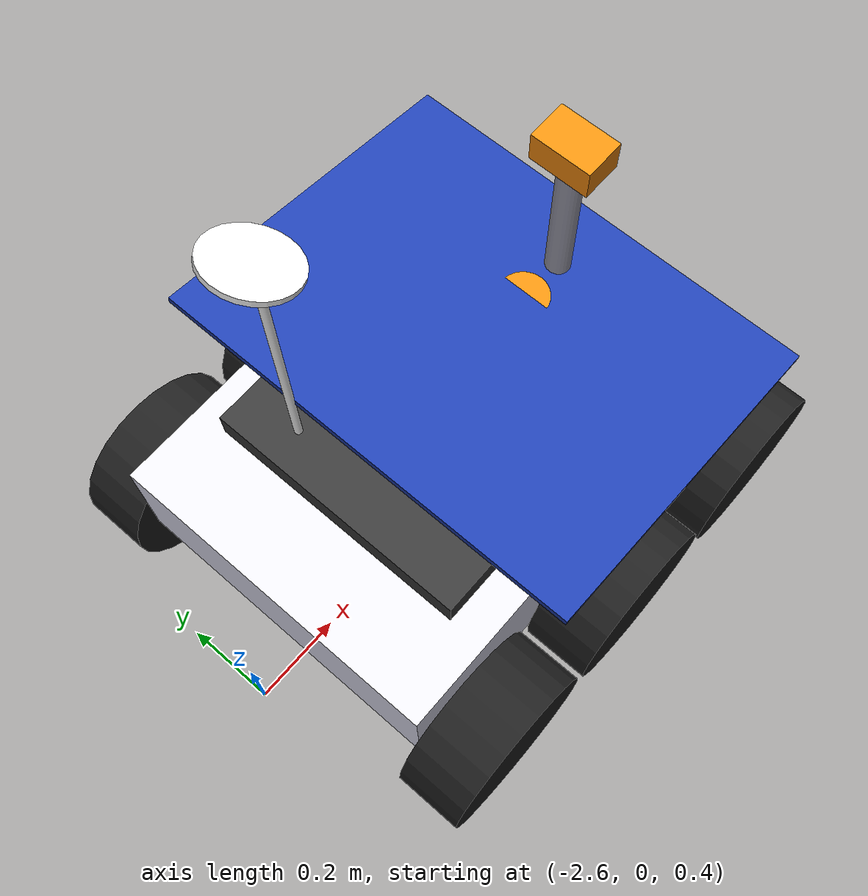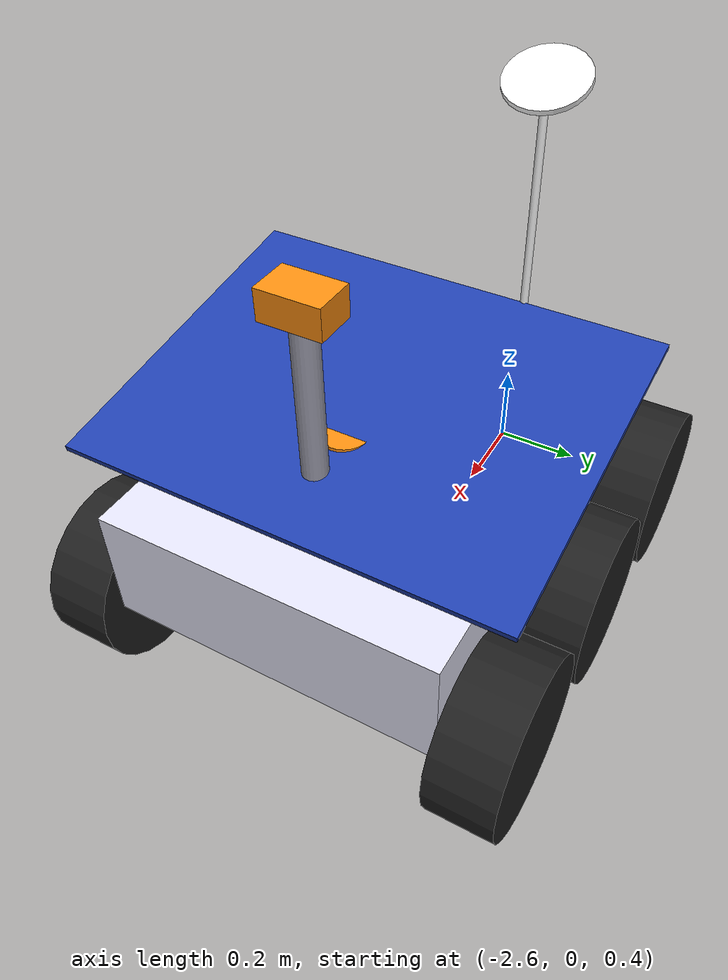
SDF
<sdf version="1.9">
 <world name="lunar_terrain">
  <model name="lunar_rover">
   <pose>-2 0 0.42 0 0 0</pose>
   <link name="base_footprint">
    <inertial>
     <pose>0.016666666666666659 0.0016666666666666659 0.37855555555555559 0 0 0</pose>
     <mass>18</mass>
     <inertia>
      <ixx>1.0591291359493979</ixx>
      <ixy>0.0079999999999999967</ixy>
      <ixz>-0.084729376993739725</ixz>
      <iyy>1.770404444444444</iyy>
      <iyz>-0.014743333333333339</iyz>
      <izz>2.1049767751617141</izz>
     </inertia>
    </inertial>
    <collision name="base_footprint_fixed_joint_lump__base_link_collision">
     <pose>0 0 0.33000000000000002 0 0 0</pose>
     <geometry><box><size>1 0.69999999999999996 0.25</size></box></geometry>
     <surface><friction><ode><mu>0.29999999999999999</mu><mu2>0.29999999999999999</mu2></ode></friction></surface>
    </collision>
    <collision name="base_footprint_fixed_joint_lump__equipment_deck_collision_1">
     <pose>0 0 0.495 0 0 0</pose>
     <geometry><box><size>0.65000000000000002 0.55000000000000004 0.059999999999999998</size></box></geometry>
    </collision>
    <collision name="base_footprint_fixed_joint_lump__antenna_collision_2">
     <pose>-0.25 0.14999999999999999 0.79499999999999993 0 0 0</pose>
     <geometry>
      <cylinder><length>0.55000000000000004</length><radius>0.0080000000000000002</radius></cylinder>
     </geometry>
    </collision>
    <collision name="base_footprint_fixed_joint_lump__antenna_dish_collision_3">
     <pose>-0.25 0.14999999999999999 1.095 0 0.39999999999999997 0</pose>
     <geometry><cylinder><length>0.01</length><radius>0.080000000000000002</radius></cylinder></geometry>
    </collision>
    <collision name="base_footprint_fixed_joint_lump__camera_mast_collision_4">
     <pose>0.29999999999999999 0 0.69500000000000006 0 0 0</pose>
     <geometry>
      <cylinder><length>0.40000000000000002</length><radius>0.025000000000000001</radius></cylinder>
     </geometry>
    </collision>
    <collision name="base_footprint_fixed_joint_lump__camera_link_collision_5">
     <pose>0.29999999999999999 0 0.91500000000000004 0 0 0</pose>
     <geometry><box><size>0.080000000000000002 0.12 0.059999999999999998</size></box></geometry>
    </collision>
    <collision name="base_footprint_fixed_joint_lump__lidar_link_collision_6">
     <pose>0.20000000000000001 0 0.55500000000000005 0 0 0</pose>
     <geometry>
      <cylinder><length>0.059999999999999998</length><radius>0.050000000000000003</radius></cylinder>
     </geometry>
    </collision>
    <collision name="base_footprint_fixed_joint_lump__solar_panel_collision_7">
     <pose>0.10000000000000001 0 0.59499999999999997 0 0.14999999999999999 0</pose>
     <geometry><box><size>0.69999999999999996 0.90000000000000002 0.012</size></box></geometry>
    </collision>
    <visual name="base_footprint_fixed_joint_lump__base_link_visual">
     <pose>0 0 0.33000000000000002 0 0 0</pose>
     <geometry><box><size>1 0.69999999999999996 0.25</size></box></geometry>
     <material>
      <diffuse>0.900000036 0.900000036 0.974999964 1</diffuse>
      <ambient>0.900000036 0.900000036 0.974999964 1</ambient>
     </material>
    </visual>
    <visual name="base_footprint_fixed_joint_lump__equipment_deck_visual_1">
     <pose>0 0 0.495 0 0 0</pose>
     <geometry><box><size>0.65000000000000002 0.55000000000000004 0.059999999999999998</size></box></geometry>
     <material>
      <diffuse>0.225000009 0.225000009 0.225000009 1</diffuse>
      <ambient>0.225000009 0.225000009 0.225000009 1</ambient>
     </material>
    </visual>
    <visual name="base_footprint_fixed_joint_lump__antenna_visual_2">
     <pose>-0.25 0.14999999999999999 0.79499999999999993 0 0 0</pose>
     <geometry>
      <cylinder><length>0.55000000000000004</length><radius>0.0080000000000000002</radius></cylinder>
     </geometry>
     <material><diffuse>1 1 1 1</diffuse><ambient>1 1 1 1</ambient></material>
    </visual>
    <visual name="base_footprint_fixed_joint_lump__antenna_dish_visual_3">
     <pose>-0.25 0.14999999999999999 1.095 0 0.39999999999999997 0</pose>
     <geometry><cylinder><length>0.01</length><radius>0.080000000000000002</radius></cylinder></geometry>
     <material><diffuse>1 1 1 1</diffuse><ambient>1 1 1 1</ambient></material>
    </visual>
    <visual name="base_footprint_fixed_joint_lump__camera_mast_visual_4">
     <pose>0.29999999999999999 0 0.69500000000000006 0 0 0</pose>
     <geometry>
      <cylinder><length>0.40000000000000002</length><radius>0.025000000000000001</radius></cylinder>
     </geometry>
     <material><diffuse>0.625 0.625 0.6875 1</diffuse><ambient>0.625 0.625 0.6875 1</ambient></material>
    </visual>
    <visual name="base_footprint_fixed_joint_lump__camera_link_visual_5">
     <pose>0.29999999999999999 0 0.91500000000000004 0 0 0</pose>
     <geometry><box><size>0.080000000000000002 0.12 0.059999999999999998</size></box></geometry>
     <material><diffuse>1 0.5625 0.0625 1</diffuse><ambient>1 0.5625 0.0625 1</ambient></material>
    </visual>
    <visual name="base_footprint_fixed_joint_lump__lidar_link_visual_6">
     <pose>0.20000000000000001 0 0.55500000000000005 0 0 0</pose>
     <geometry>
      <cylinder><length>0.059999999999999998</length><radius>0.050000000000000003</radius></cylinder>
     </geometry>
     <material><diffuse>1 0.5625 0.0625 1</diffuse><ambient>1 0.5625 0.0625 1</ambient></material>
    </visual>
    <visual name="base_footprint_fixed_joint_lump__solar_panel_visual_7">
     <pose>0.10000000000000001 0 0.59499999999999997 0 0.14999999999999999 0</pose>
     <geometry><box><size>0.69999999999999996 0.90000000000000002 0.012</size></box></geometry>
     <material><diffuse>0.125 0.25 0.6875 1</diffuse><ambient>0.125 0.25 0.6875 1</ambient></material>
    </visual>
    <sensor name="lidar" type="gpu_lidar">
     <pose>0.2 0 0.555 0 0 0</pose>
     <topic>scan</topic>
     <gz_frame_id>lidar_link</gz_frame_id>
     <update_rate>10</update_rate>
     <always_on>1</always_on>
     <visualize>true</visualize>
     <lidar>
      <scan>
       <horizontal>
        <samples>360</samples>
        <resolution>1</resolution>
        <min_angle>-3.14159</min_angle>
        <max_angle>3.14159</max_angle>
       </horizontal>
       <vertical>
        <samples>1</samples>
        <resolution>1</resolution>
        <min_angle>0</min_angle>
        <max_angle>0</max_angle>
       </vertical>
      </scan>
      <range><min>0.12</min><max>12.0</max><resolution>0.01</resolution></range>
      <noise><type>gaussian</type><mean>0.0</mean><stddev>0.01</stddev></noise>
     </lidar>
    </sensor>
    <sensor name="imu" type="imu">
     <pose>0 0 0.4 0 0 0</pose>
     <topic>imu/data</topic>
     <gz_frame_id>imu_link</gz_frame_id>
     <update_rate>50</update_rate>
     <always_on>1</always_on>
     <imu>
      <angular_velocity>
       <x><noise type="gaussian"><mean>0</mean><stddev>0.002</stddev></noise></x>
       <y><noise type="gaussian"><mean>0</mean><stddev>0.002</stddev></noise></y>
       <z><noise type="gaussian"><mean>0</mean><stddev>0.002</stddev></noise></z>
      </angular_velocity>
      <linear_acceleration>
       <x><noise type="gaussian"><mean>0</mean><stddev>0.017</stddev></noise></x>
       <y><noise type="gaussian"><mean>0</mean><stddev>0.017</stddev></noise></y>
       <z><noise type="gaussian"><mean>0</mean><stddev>0.017</stddev></noise></z>
      </linear_acceleration>
     </imu>
    </sensor>
   </link>
   <joint name="front_left_joint" type="revolute">
    <pose relative_to="base_footprint">0.38 0.41999999999999998 0.17999999999999999 0 0 0</pose>
    <parent>base_footprint</parent>
    <child>front_left_wheel</child>
    <axis>
     <xyz>0 1 0</xyz>
     <limit><effort>100</effort><velocity>10</velocity><lower>-inf</lower><upper>inf</upper></limit>
     <dynamics>
      <damping>0.10000000000000001</damping>
      <friction>0.050000000000000003</friction>
      <spring_reference>0</spring_reference>
      <spring_stiffness>0</spring_stiffness>
     </dynamics>
    </axis>
   </joint>
   <link name="front_left_wheel">
    <pose relative_to="front_left_joint">0 0 0 0 0 0</pose>
    <inertial>
     <mass>1.5</mass>
     <inertia>
      <ixx>0.0146</ixx>
      <ixy>0</ixy>
      <ixz>0</ixz>
      <iyy>0.024299999999999999</iyy>
      <iyz>0</iyz>
      <izz>0.0146</izz>
     </inertia>
    </inertial>
    <collision name="front_left_wheel_collision_collision">
     <pose>0 0 0 1.5707963000000003 0 0</pose>
     <geometry>
      <cylinder><length>0.14000000000000001</length><radius>0.17999999999999999</radius></cylinder>
     </geometry>
     <surface>
      <friction>
       <ode><mu>0.75</mu><mu2>0.75</mu2><fdir1>1 0 0</fdir1></ode>
       <bullet><friction>0.75</friction><friction2>0.75</friction2><fdir1>1 0 0</fdir1></bullet>
      </friction>
      <contact>
       <ode><kp>50000</kp><kd>5000</kd><min_depth>0.0001</min_depth><max_vel>0.050000000000000003</max_vel></ode>
       <bullet>
        <kp>50000</kp>
        <kd>5000</kd>
        <split_impulse>true</split_impulse>
        <split_impulse_penetration_threshold>-0.01</split_impulse_penetration_threshold>
       </bullet>
      </contact>
     </surface>
    </collision>
    <visual name="front_left_wheel_visual">
     <pose>0 0 0 1.5707963000000003 0 0</pose>
     <geometry>
      <cylinder><length>0.14000000000000001</length><radius>0.17999999999999999</radius></cylinder>
     </geometry>
     <material><diffuse>0.125 0.125 0.125 1</diffuse><ambient>0.125 0.125 0.125 1</ambient></material>
    </visual>
   </link>
   <joint name="front_right_joint" type="revolute">
    <pose relative_to="base_footprint">0.38 -0.41999999999999998 0.17999999999999999 0 0 0</pose>
    <parent>base_footprint</parent>
    <child>front_right_wheel</child>
    <axis>
     <xyz>0 1 0</xyz>
     <limit><effort>100</effort><velocity>10</velocity><lower>-inf</lower><upper>inf</upper></limit>
     <dynamics>
      <damping>0.10000000000000001</damping>
      <friction>0.050000000000000003</friction>
      <spring_reference>0</spring_reference>
      <spring_stiffness>0</spring_stiffness>
     </dynamics>
    </axis>
   </joint>
   <link name="front_right_wheel">
    <pose relative_to="front_right_joint">0 0 0 0 0 0</pose>
    <inertial>
     <mass>1.5</mass>
     <inertia>
      <ixx>0.0146</ixx>
      <ixy>0</ixy>
      <ixz>0</ixz>
      <iyy>0.024299999999999999</iyy>
      <iyz>0</iyz>
      <izz>0.0146</izz>
     </inertia>
    </inertial>
    <collision name="front_right_wheel_collision_collision">
     <pose>0 0 0 1.5707963000000003 0 0</pose>
     <geometry>
      <cylinder><length>0.14000000000000001</length><radius>0.17999999999999999</radius></cylinder>
     </geometry>
     <surface>
      <friction>
       <ode><mu>0.75</mu><mu2>0.75</mu2><fdir1>1 0 0</fdir1></ode>
       <bullet><friction>0.75</friction><friction2>0.75</friction2><fdir1>1 0 0</fdir1></bullet>
      </friction>
      <contact>
       <ode><kp>50000</kp><kd>5000</kd><min_depth>0.0001</min_depth><max_vel>0.050000000000000003</max_vel></ode>
       <bullet>
        <kp>50000</kp>
        <kd>5000</kd>
        <split_impulse>true</split_impulse>
        <split_impulse_penetration_threshold>-0.01</split_impulse_penetration_threshold>
       </bullet>
      </contact>
     </surface>
    </collision>
    <visual name="front_right_wheel_visual">
     <pose>0 0 0 1.5707963000000003 0 0</pose>
     <geometry>
      <cylinder><length>0.14000000000000001</length><radius>0.17999999999999999</radius></cylinder>
     </geometry>
     <material><diffuse>0.125 0.125 0.125 1</diffuse><ambient>0.125 0.125 0.125 1</ambient></material>
    </visual>
   </link>
   <joint name="mid_left_joint" type="revolute">
    <pose relative_to="base_footprint">0 0.41999999999999998 0.17999999999999999 0 0 0</pose>
    <parent>base_footprint</parent>
    <child>mid_left_wheel</child>
    <axis>
     <xyz>0 1 0</xyz>
     <limit><effort>100</effort><velocity>10</velocity><lower>-inf</lower><upper>inf</upper></limit>
     <dynamics>
      <damping>0.10000000000000001</damping>
      <friction>0.050000000000000003</friction>
      <spring_reference>0</spring_reference>
      <spring_stiffness>0</spring_stiffness>
     </dynamics>
    </axis>
   </joint>
   <link name="mid_left_wheel">
    <pose relative_to="mid_left_joint">0 0 0 0 0 0</pose>
    <inertial>
     <mass>1.5</mass>
     <inertia>
      <ixx>0.0146</ixx>
      <ixy>0</ixy>
      <ixz>0</ixz>
      <iyy>0.024299999999999999</iyy>
      <iyz>0</iyz>
      <izz>0.0146</izz>
     </inertia>
    </inertial>
    <collision name="mid_left_wheel_collision_collision">
     <pose>0 0 0 1.5707963000000003 0 0</pose>
     <geometry>
      <cylinder><length>0.14000000000000001</length><radius>0.17999999999999999</radius></cylinder>
     </geometry>
     <surface>
      <friction>
       <ode><mu>0.84999999999999998</mu><mu2>0.84999999999999998</mu2><fdir1>1 0 0</fdir1></ode>
       <bullet>
        <friction>0.84999999999999998</friction>
        <friction2>0.84999999999999998</friction2>
        <fdir1>1 0 0</fdir1>
       </bullet>
      </friction>
      <contact>
       <ode><kp>50000</kp><kd>5000</kd><min_depth>0.0001</min_depth><max_vel>0.050000000000000003</max_vel></ode>
       <bullet>
        <kp>50000</kp>
        <kd>5000</kd>
        <split_impulse>true</split_impulse>
        <split_impulse_penetration_threshold>-0.01</split_impulse_penetration_threshold>
       </bullet>
      </contact>
     </surface>
    </collision>
    <visual name="mid_left_wheel_visual">
     <pose>0 0 0 1.5707963000000003 0 0</pose>
     <geometry>
      <cylinder><length>0.14000000000000001</length><radius>0.17999999999999999</radius></cylinder>
     </geometry>
     <material><diffuse>0.125 0.125 0.125 1</diffuse><ambient>0.125 0.125 0.125 1</ambient></material>
    </visual>
   </link>
   <joint name="mid_right_joint" type="revolute">
    <pose relative_to="base_footprint">0 -0.41999999999999998 0.17999999999999999 0 0 0</pose>
    <parent>base_footprint</parent>
    <child>mid_right_wheel</child>
    <axis>
     <xyz>0 1 0</xyz>
     <limit><effort>100</effort><velocity>10</velocity><lower>-inf</lower><upper>inf</upper></limit>
     <dynamics>
      <damping>0.10000000000000001</damping>
      <friction>0.050000000000000003</friction>
      <spring_reference>0</spring_reference>
      <spring_stiffness>0</spring_stiffness>
     </dynamics>
    </axis>
   </joint>
   <link name="mid_right_wheel">
    <pose relative_to="mid_right_joint">0 0 0 0 0 0</pose>
    <inertial>
     <mass>1.5</mass>
     <inertia>
      <ixx>0.0146</ixx>
      <ixy>0</ixy>
      <ixz>0</ixz>
      <iyy>0.024299999999999999</iyy>
      <iyz>0</iyz>
      <izz>0.0146</izz>
     </inertia>
    </inertial>
    <collision name="mid_right_wheel_collision_collision">
     <pose>0 0 0 1.5707963000000003 0 0</pose>
     <geometry>
      <cylinder><length>0.14000000000000001</length><radius>0.17999999999999999</radius></cylinder>
     </geometry>
     <surface>
      <friction>
       <ode><mu>0.84999999999999998</mu><mu2>0.84999999999999998</mu2><fdir1>1 0 0</fdir1></ode>
       <bullet>
        <friction>0.84999999999999998</friction>
        <friction2>0.84999999999999998</friction2>
        <fdir1>1 0 0</fdir1>
       </bullet>
      </friction>
      <contact>
       <ode><kp>50000</kp><kd>5000</kd><min_depth>0.0001</min_depth><max_vel>0.050000000000000003</max_vel></ode>
       <bullet>
        <kp>50000</kp>
        <kd>5000</kd>
        <split_impulse>true</split_impulse>
        <split_impulse_penetration_threshold>-0.01</split_impulse_penetration_threshold>
       </bullet>
      </contact>
     </surface>
    </collision>
    <visual name="mid_right_wheel_visual">
     <pose>0 0 0 1.5707963000000003 0 0</pose>
     <geometry>
      <cylinder><length>0.14000000000000001</length><radius>0.17999999999999999</radius></cylinder>
     </geometry>
     <material><diffuse>0.125 0.125 0.125 1</diffuse><ambient>0.125 0.125 0.125 1</ambient></material>
    </visual>
   </link>
   <joint name="rear_left_joint" type="revolute">
    <pose relative_to="base_footprint">-0.38 0.41999999999999998 0.17999999999999999 0 0 0</pose>
    <parent>base_footprint</parent>
    <child>rear_left_wheel</child>
    <axis>
     <xyz>0 1 0</xyz>
     <limit><effort>100</effort><velocity>10</velocity><lower>-inf</lower><upper>inf</upper></limit>
     <dynamics>
      <damping>0.10000000000000001</damping>
      <friction>0.050000000000000003</friction>
      <spring_reference>0</spring_reference>
      <spring_stiffness>0</spring_stiffness>
     </dynamics>
    </axis>
   </joint>
   <link name="rear_left_wheel">
    <pose relative_to="rear_left_joint">0 0 0 0 0 0</pose>
    <inertial>
     <mass>1.5</mass>
     <inertia>
      <ixx>0.0146</ixx>
      <ixy>0</ixy>
      <ixz>0</ixz>
      <iyy>0.024299999999999999</iyy>
      <iyz>0</iyz>
      <izz>0.0146</izz>
     </inertia>
    </inertial>
    <collision name="rear_left_wheel_collision_collision">
     <pose>0 0 0 1.5707963000000003 0 0</pose>
     <geometry>
      <cylinder><length>0.14000000000000001</length><radius>0.17999999999999999</radius></cylinder>
     </geometry>
     <surface>
      <friction>
       <ode><mu>0.75</mu><mu2>0.75</mu2><fdir1>1 0 0</fdir1></ode>
       <bullet><friction>0.75</friction><friction2>0.75</friction2><fdir1>1 0 0</fdir1></bullet>
      </friction>
      <contact>
       <ode><kp>50000</kp><kd>5000</kd><min_depth>0.0001</min_depth><max_vel>0.050000000000000003</max_vel></ode>
       <bullet>
        <kp>50000</kp>
        <kd>5000</kd>
        <split_impulse>true</split_impulse>
        <split_impulse_penetration_threshold>-0.01</split_impulse_penetration_threshold>
       </bullet>
      </contact>
     </surface>
    </collision>
    <visual name="rear_left_wheel_visual">
     <pose>0 0 0 1.5707963000000003 0 0</pose>
     <geometry>
      <cylinder><length>0.14000000000000001</length><radius>0.17999999999999999</radius></cylinder>
     </geometry>
     <material><diffuse>0.125 0.125 0.125 1</diffuse><ambient>0.125 0.125 0.125 1</ambient></material>
    </visual>
   </link>
   <joint name="rear_right_joint" type="revolute">
    <pose relative_to="base_footprint">-0.38 -0.41999999999999998 0.17999999999999999 0 0 0</pose>
    <parent>base_footprint</parent>
    <child>rear_right_wheel</child>
    <axis>
     <xyz>0 1 0</xyz>
     <limit><effort>100</effort><velocity>10</velocity><lower>-inf</lower><upper>inf</upper></limit>
     <dynamics>
      <damping>0.10000000000000001</damping>
      <friction>0.050000000000000003</friction>
      <spring_reference>0</spring_reference>
      <spring_stiffness>0</spring_stiffness>
     </dynamics>
    </axis>
   </joint>
   <link name="rear_right_wheel">
    <pose relative_to="rear_right_joint">0 0 0 0 0 0</pose>
    <inertial>
     <mass>1.5</mass>
     <inertia>
      <ixx>0.0146</ixx>
      <ixy>0</ixy>
      <ixz>0</ixz>
      <iyy>0.024299999999999999</iyy>
      <iyz>0</iyz>
      <izz>0.0146</izz>
     </inertia>
    </inertial>
    <collision name="rear_right_wheel_collision_collision">
     <pose>0 0 0 1.5707963000000003 0 0</pose>
     <geometry>
      <cylinder><length>0.14000000000000001</length><radius>0.17999999999999999</radius></cylinder>
     </geometry>
     <surface>
      <friction>
       <ode><mu>0.75</mu><mu2>0.75</mu2><fdir1>1 0 0</fdir1></ode>
       <bullet><friction>0.75</friction><friction2>0.75</friction2><fdir1>1 0 0</fdir1></bullet>
      </friction>
      <contact>
       <ode><kp>50000</kp><kd>5000</kd><min_depth>0.0001</min_depth><max_vel>0.050000000000000003</max_vel></ode>
       <bullet>
        <kp>50000</kp>
        <kd>5000</kd>
        <split_impulse>true</split_impulse>
        <split_impulse_penetration_threshold>-0.01</split_impulse_penetration_threshold>
       </bullet>
      </contact>
     </surface>
    </collision>
    <visual name="rear_right_wheel_visual">
     <pose>0 0 0 1.5707963000000003 0 0</pose>
     <geometry>
      <cylinder><length>0.14000000000000001</length><radius>0.17999999999999999</radius></cylinder>
     </geometry>
     <material><diffuse>0.125 0.125 0.125 1</diffuse><ambient>0.125 0.125 0.125 1</ambient></material>
    </visual>
   </link>
   <plugin name="gz::sim::systems::DiffDrive" filename="gz-sim-diff-drive-system">
    <left_joint>front_left_joint</left_joint>
    <left_joint>mid_left_joint</left_joint>
    <left_joint>rear_left_joint</left_joint>
    <right_joint>front_right_joint</right_joint>
    <right_joint>mid_right_joint</right_joint>
    <right_joint>rear_right_joint</right_joint>
    <wheel_separation>0.84</wheel_separation>
    <wheel_radius>0.18</wheel_radius>
    <max_linear_velocity>0.5</max_linear_velocity>
    <min_linear_velocity>-0.5</min_linear_velocity>
    <max_angular_velocity>1.0</max_angular_velocity>
    <min_angular_velocity>-1.0</min_angular_velocity>
    <max_linear_acceleration>1.5</max_linear_acceleration>
    <max_angular_acceleration>2.0</max_angular_acceleration>
    <topic>cmd_vel</topic>
    <frame_id>odom</frame_id>
    <child_frame_id>base_footprint</child_frame_id>
    <odom_publish_frequency>30</odom_publish_frequency>
   </plugin>
   <plugin name="gz::sim::systems::JointStatePublisher" filename="gz-sim-joint-state-publisher-system"/>
   <frame name="antenna_dish_joint" attached_to="antenna">
    <pose>0 0 0.29999999999999999 0 0.39999999999999986 0</pose>
   </frame>
   <frame name="antenna_dish" attached_to="antenna_dish_joint"/>
   <frame name="antenna_joint" attached_to="equipment_deck">
    <pose>-0.25 0.14999999999999999 0.29999999999999999 0 0 0</pose>
   </frame>
   <frame name="antenna" attached_to="antenna_joint"/>
   <frame name="camera_optical_joint" attached_to="camera_link">
    <pose>0.040000000000000001 0 0 -1.5707963267948959 -5.5511151231257827e-17 -1.5707963267948959</pose>
   </frame>
   <frame name="camera_optical_frame" attached_to="camera_optical_joint"/>
   <frame name="camera_head_joint" attached_to="camera_mast"><pose>0 0 0.22 0 0 0</pose></frame>
   <frame name="camera_link" attached_to="camera_head_joint"/>
   <frame name="camera_mast_joint" attached_to="equipment_deck">
    <pose>0.29999999999999999 0 0.20000000000000001 0 0 0</pose>
   </frame>
   <frame name="camera_mast" attached_to="camera_mast_joint"/>
   <frame name="lidar_joint" attached_to="equipment_deck">
    <pose>0.20000000000000001 0 0.059999999999999998 0 0 0</pose>
   </frame>
   <frame name="lidar_link" attached_to="lidar_joint"/>
   <frame name="solar_panel_joint" attached_to="equipment_deck">
    <pose>0.10000000000000001 0 0.10000000000000001 0 0.14999999999999999 0</pose>
   </frame>
   <frame name="solar_panel" attached_to="solar_panel_joint"/>
   <frame name="deck_joint" attached_to="base_link"><pose>0 0 0.16500000000000001 0 0 0</pose></frame>
   <frame name="equipment_deck" attached_to="deck_joint"/>
   <frame name="base_footprint_joint" attached_to="base_footprint">
    <pose>0 0 0.33000000000000002 0 0 0</pose>
   </frame>
   <frame name="base_link" attached_to="base_footprint_joint"/>
  </model>
 </world>
</sdf>
